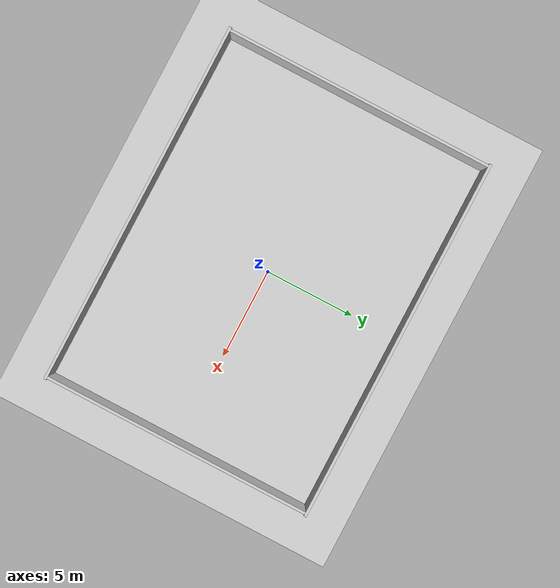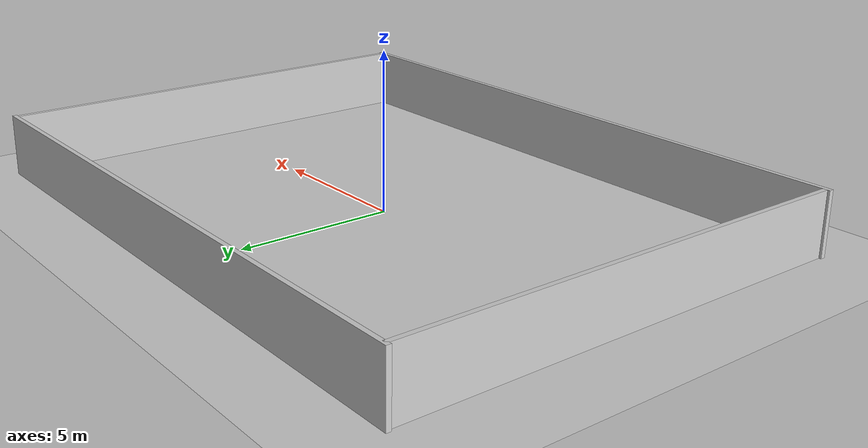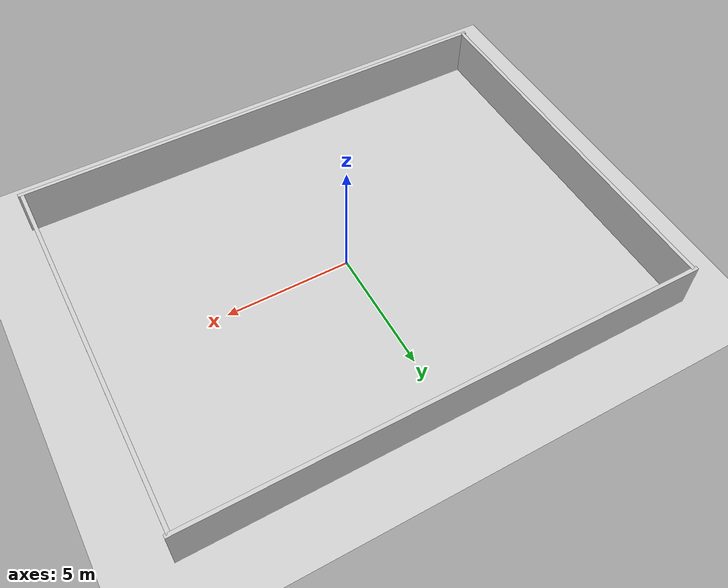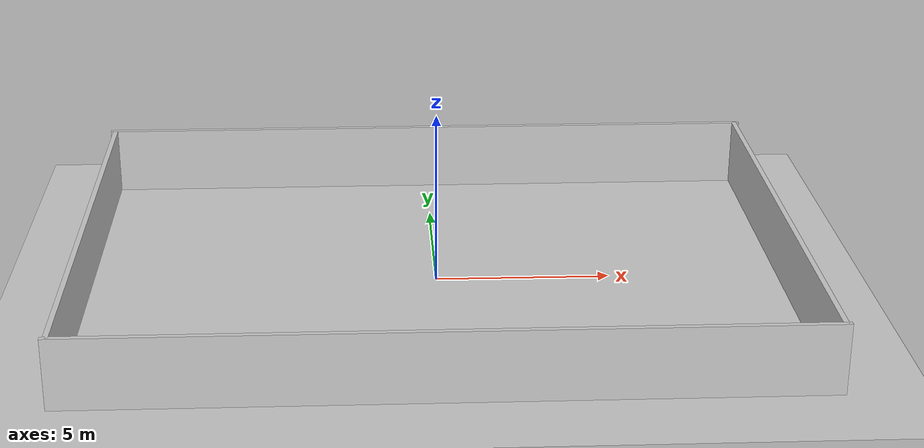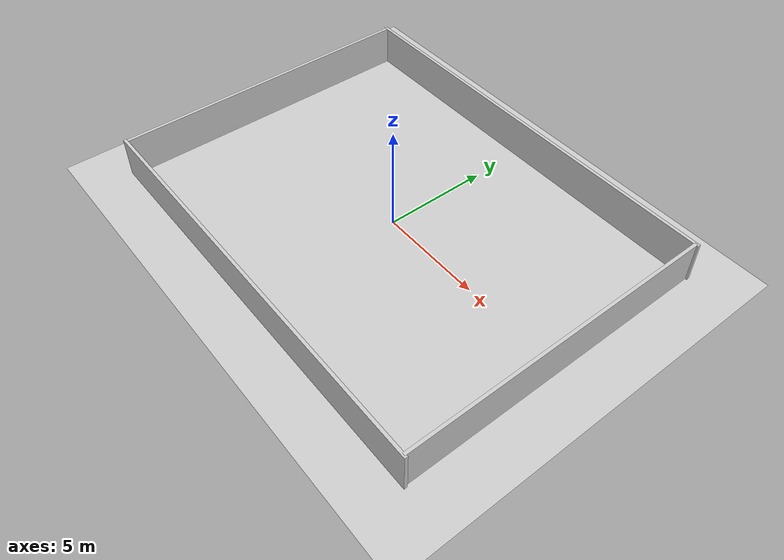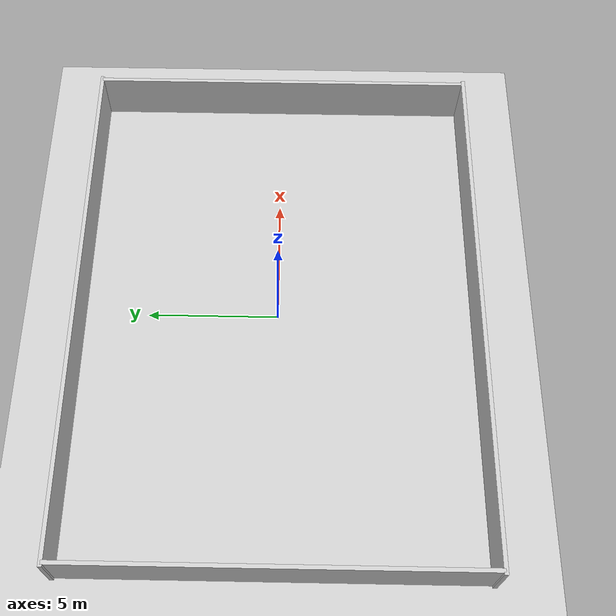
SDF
<?xml version="1.0"?>
<sdf version="1.6">
  <world name="navigation_empty">

    <include><uri>model://ground_plane</uri></include>
    <include><uri>model://sun</uri></include>

    <physics name="default" default="0" type="ode">
      <max_step_size>0.001</max_step_size>
      <real_time_factor>1</real_time_factor>
      <real_time_update_rate>1000</real_time_update_rate>
    </physics>

    <scene>
      <ambient>0.5 0.5 0.5 1</ambient>
      <background>0.7 0.8 0.9 1</background>
      <shadows>true</shadows>
    </scene>

    <!-- ── Perimeter walls (room 20 m × 15 m, wall thickness 0.15 m, height 2.0 m) ── -->

    <!-- South wall (y = -7.5) -->
    <model name="wall_south">
      <static>true</static>
      <pose>0 -7.5 1.0 0 0 0</pose>
      <link name="link">
        <collision name="col"><geometry><box><size>20.3 0.15 2.0</size></box></geometry></collision>
        <visual name="vis">
          <geometry><box><size>20.3 0.15 2.0</size></box></geometry>
          <material><ambient>0.8 0.8 0.8 1</ambient><diffuse>0.8 0.8 0.8 1</diffuse></material>
        </visual>
      </link>
    </model>

    <!-- North wall (y = +7.5) -->
    <model name="wall_north">
      <static>true</static>
      <pose>0 7.5 1.0 0 0 0</pose>
      <link name="link">
        <collision name="col"><geometry><box><size>20.3 0.15 2.0</size></box></geometry></collision>
        <visual name="vis">
          <geometry><box><size>20.3 0.15 2.0</size></box></geometry>
          <material><ambient>0.8 0.8 0.8 1</ambient><diffuse>0.8 0.8 0.8 1</diffuse></material>
        </visual>
      </link>
    </model>

    <!-- West wall (x = -10) -->
    <model name="wall_west">
      <static>true</static>
      <pose>-10 0 1.0 0 0 0</pose>
      <link name="link">
        <collision name="col"><geometry><box><size>0.15 15.0 2.0</size></box></geometry></collision>
        <visual name="vis">
          <geometry><box><size>0.15 15.0 2.0</size></box></geometry>
          <material><ambient>0.8 0.8 0.8 1</ambient><diffuse>0.8 0.8 0.8 1</diffuse></material>
        </visual>
      </link>
    </model>

    <!-- East wall (x = +10) -->
    <model name="wall_east">
      <static>true</static>
      <pose>10 0 1.0 0 0 0</pose>
      <link name="link">
        <collision name="col"><geometry><box><size>0.15 15.0 2.0</size></box></geometry></collision>
        <visual name="vis">
          <geometry><box><size>0.15 15.0 2.0</size></box></geometry>
          <material><ambient>0.8 0.8 0.8 1</ambient><diffuse>0.8 0.8 0.8 1</diffuse></material>
        </visual>
      </link>
    </model>

  </world>
</sdf>
